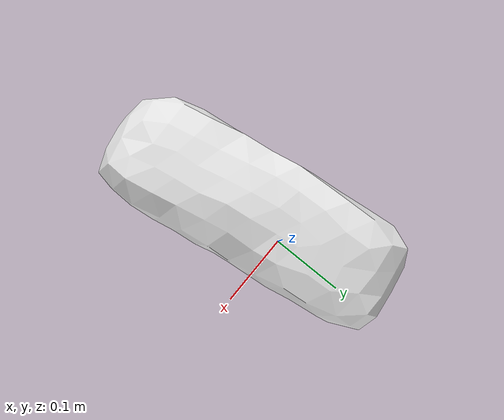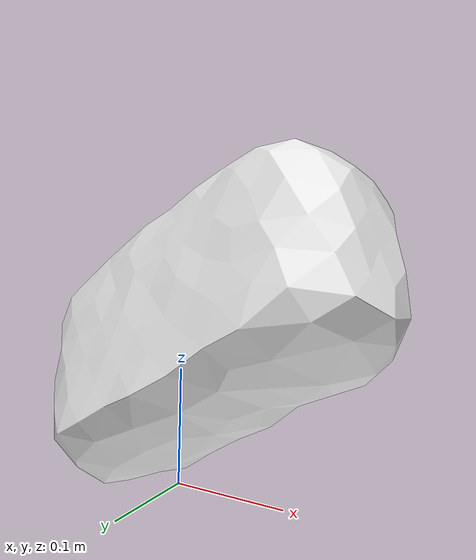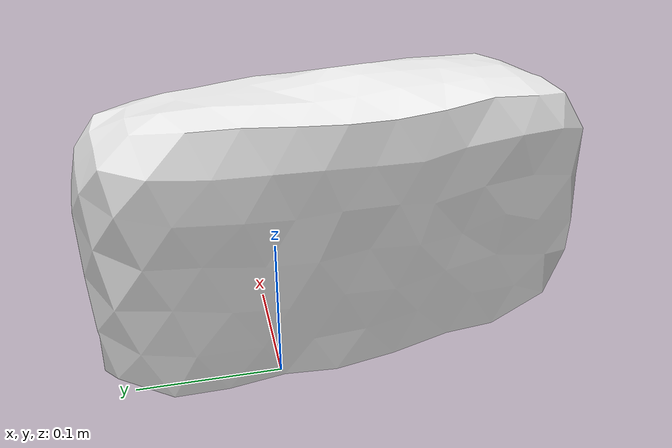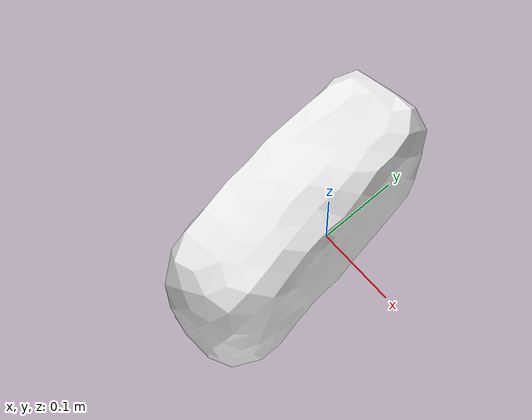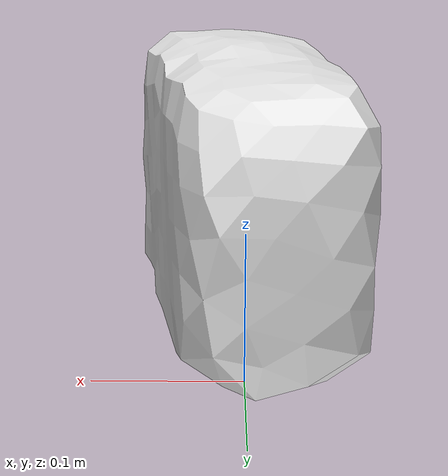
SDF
<?xml version="1.0" ?><sdf version="1.5"><model name="pauli-suitcase">
<link name="link">
<pose>0 0 0 0 0 0</pose>
<inertial>
<pose>-0.0004365 -0.042819 0.122433 0 0 0</pose>
<mass>0.25</mass>
<inertia>
<ixx>0.00292222</ixx>
<ixy>0</ixy><iyy>0.00116988</iyy>
<ixz>0</ixz><iyz>0</iyz><izz>0.00267893</izz>
</inertia>
</inertial>
<visual name="visual">
<pose>0 0 0 0 0 0</pose>
<geometry><mesh><uri>model://pauli-suitcase/meshes/pauli-suitcase.dae</uri></mesh></geometry>
<material><script><uri>file://media/materials/scripts/gazebo.material</uri><name>Gazebo/WhiteGlow</name></script></material></visual>
<collision name="collision"><pose>0 0 0 0 0 0</pose><geometry><mesh><uri>model://pauli-suitcase/meshes/pauli-suitcase.dae</uri></mesh></geometry>
<surface><friction><ode><mu>1.000000</mu><mu2>1.000000</mu2></ode></friction></surface>
</collision></link></model></sdf>
